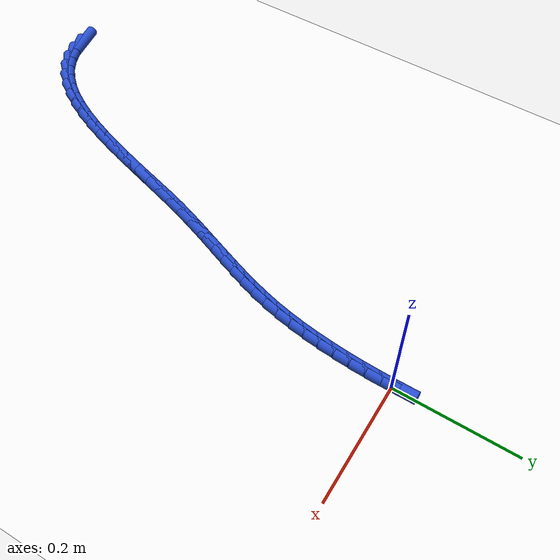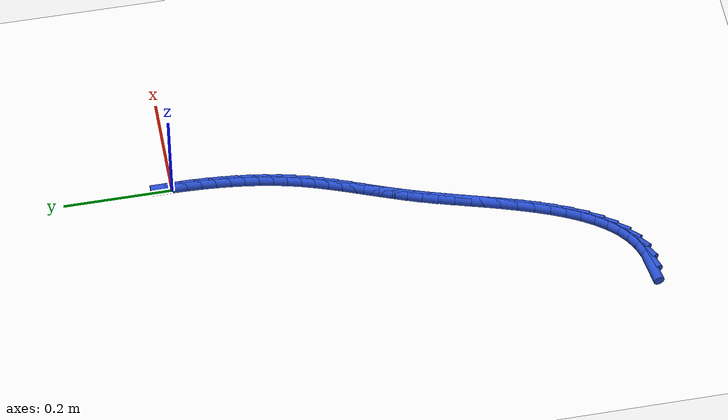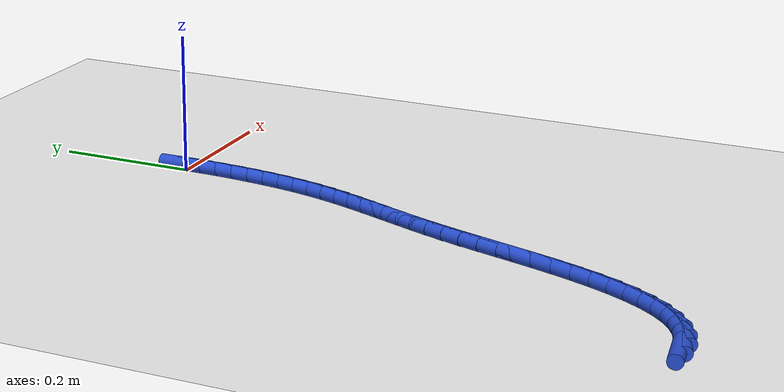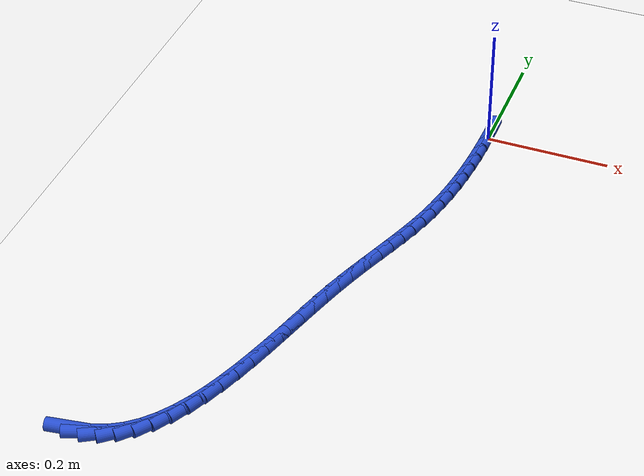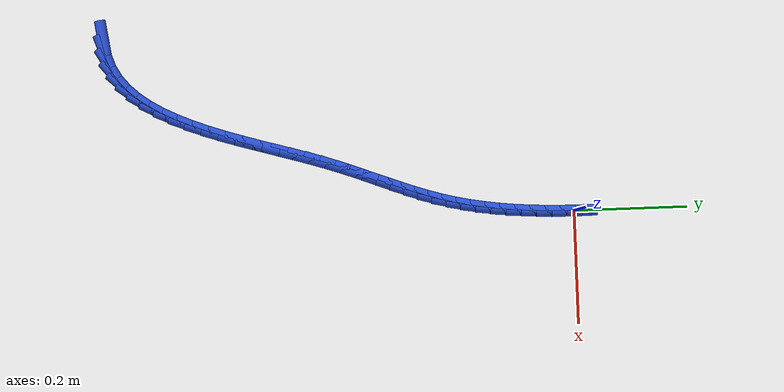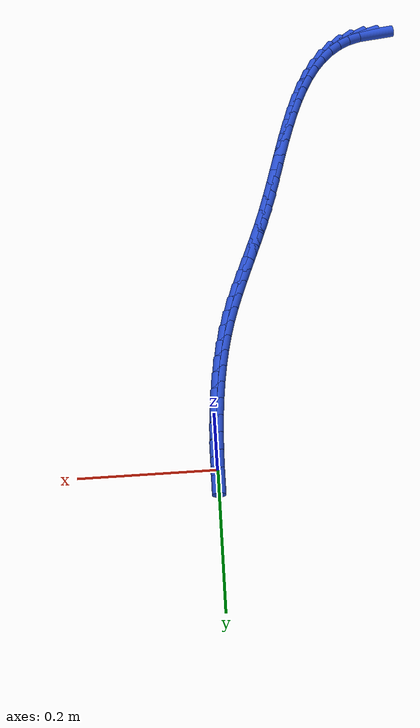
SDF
<sdf version="1.6">
 <world name="default">
  <model name="ground_plane">
   <static>1</static>
   <link name="link">
    <collision name="collision">
     <geometry><plane><normal>0 0 1</normal><size>100 100</size></plane></geometry>
     <surface><friction><ode><mu>100</mu><mu2>50</mu2></ode></friction></surface>
    </collision>
    <visual name="visual">
     <cast_shadows>0</cast_shadows>
     <geometry><plane><normal>0 0 1</normal><size>100 100</size></plane></geometry>
     <material>
      <script><uri>file://media/materials/scripts/gazebo.material</uri><name>Gazebo/WhiteGlow</name></script>
     </material>
    </visual>
   </link>
  </model>
  <model name="line">
   <link name="link_246">
    <pose>-0.3256677049028621 -0.8202139345699211 0.01 0 1.57 0.15234743390666577</pose>
    <collision name="collision">
     <geometry><cylinder><radius>0.01</radius><length>0.08</length></cylinder></geometry>
    </collision>
    <visual name="visual">
     <material>
      <script><name>Gazebo/Blue</name><uri>file://media/materials/scripts/gazebo.material</uri></script>
     </material>
     <geometry><cylinder><radius>0.01</radius><length>0.08</length></cylinder></geometry>
    </visual>
   </link>
   <link name="link_247">
    <pose>-0.3020553265737306 -0.8165885578096587 0.01 0 1.57 0.3411176343831295</pose>
    <collision name="collision">
     <geometry><cylinder><radius>0.01</radius><length>0.08</length></cylinder></geometry>
    </collision>
    <visual name="visual">
     <material>
      <script><name>Gazebo/Blue</name><uri>file://media/materials/scripts/gazebo.material</uri></script>
     </material>
     <geometry><cylinder><radius>0.01</radius><length>0.08</length></cylinder></geometry>
    </visual>
   </link>
   <link name="link_248">
    <pose>-0.2804743852537294 -0.8089274345750729 0.01 0 1.57 0.5233773527447314</pose>
    <collision name="collision">
     <geometry><cylinder><radius>0.01</radius><length>0.08</length></cylinder></geometry>
    </collision>
    <visual name="visual">
     <material>
      <script><name>Gazebo/Blue</name><uri>file://media/materials/scripts/gazebo.material</uri></script>
     </material>
     <geometry><cylinder><radius>0.01</radius><length>0.08</length></cylinder></geometry>
    </visual>
   </link>
   <link name="link_249">
    <pose>-0.2607768314773622 -0.7975608611747657 0.01 0 1.57 0.6871710145821875</pose>
    <collision name="collision">
     <geometry><cylinder><radius>0.01</radius><length>0.08</length></cylinder></geometry>
    </collision>
    <visual name="visual">
     <material>
      <script><name>Gazebo/Blue</name><uri>file://media/materials/scripts/gazebo.material</uri></script>
     </material>
     <geometry><cylinder><radius>0.01</radius><length>0.08</length></cylinder></geometry>
    </visual>
   </link>
   <link name="link_250">
    <pose>-0.24281388263402956 -0.7828206245300234 0.01 0 1.57 0.8265054887096277</pose>
    <collision name="collision">
     <geometry><cylinder><radius>0.01</radius><length>0.08</length></cylinder></geometry>
    </collision>
    <visual name="visual">
     <material>
      <script><name>Gazebo/Blue</name><uri>file://media/materials/scripts/gazebo.material</uri></script>
     </material>
     <geometry><cylinder><radius>0.01</radius><length>0.08</length></cylinder></geometry>
    </visual>
   </link>
   <link name="link_251">
    <pose>-0.22643675611313246 -0.765038511562133 0.01 0 1.57 0.9408307306522792</pose>
    <collision name="collision">
     <geometry><cylinder><radius>0.01</radius><length>0.08</length></cylinder></geometry>
    </collision>
    <visual name="visual">
     <material>
      <script><name>Gazebo/Blue</name><uri>file://media/materials/scripts/gazebo.material</uri></script>
     </material>
     <geometry><cylinder><radius>0.01</radius><length>0.08</length></cylinder></geometry>
    </visual>
   </link>
   <link name="link_252">
    <pose>-0.21149666930407135 -0.7445463091923812 0.01 0 1.57 1.0326456431783801</pose>
    <collision name="collision">
     <geometry><cylinder><radius>0.01</radius><length>0.08</length></cylinder></geometry>
    </collision>
    <visual name="visual">
     <material>
      <script><name>Gazebo/Blue</name><uri>file://media/materials/scripts/gazebo.material</uri></script>
     </material>
     <geometry><cylinder><radius>0.01</radius><length>0.08</length></cylinder></geometry>
    </visual>
   </link>
   <link name="link_253">
    <pose>-0.19784483959624777 -0.721675804342055 0.01 0 1.57 1.1054214340294222</pose>
    <collision name="collision">
     <geometry><cylinder><radius>0.01</radius><length>0.08</length></cylinder></geometry>
    </collision>
    <visual name="visual">
     <material>
      <script><name>Gazebo/Blue</name><uri>file://media/materials/scripts/gazebo.material</uri></script>
     </material>
     <geometry><cylinder><radius>0.01</radius><length>0.08</length></cylinder></geometry>
    </visual>
   </link>
   <link name="link_254">
    <pose>-0.18533248437906222 -0.6967587839324413 0.01 0 1.57 1.1624817488314039</pose>
    <collision name="collision">
     <geometry><cylinder><radius>0.01</radius><length>0.08</length></cylinder></geometry>
    </collision>
    <visual name="visual">
     <material>
      <script><name>Gazebo/Blue</name><uri>file://media/materials/scripts/gazebo.material</uri></script>
     </material>
     <geometry><cylinder><radius>0.01</radius><length>0.08</length></cylinder></geometry>
    </visual>
   </link>
   <link name="link_255">
    <pose>-0.1738108210419154 -0.6701270348848265 0.01 0 1.57 1.2065838858881544</pose>
    <collision name="collision">
     <geometry><cylinder><radius>0.01</radius><length>0.08</length></cylinder></geometry>
    </collision>
    <visual name="visual">
     <material>
      <script><name>Gazebo/Blue</name><uri>file://media/materials/scripts/gazebo.material</uri></script>
     </material>
     <geometry><cylinder><radius>0.01</radius><length>0.08</length></cylinder></geometry>
    </visual>
   </link>
   <link name="link_256">
    <pose>-0.16313106697420815 -0.6421123441204973 0.01 0 1.57 1.2398466250267612</pose>
    <collision name="collision">
     <geometry><cylinder><radius>0.01</radius><length>0.08</length></cylinder></geometry>
    </collision>
    <visual name="visual">
     <material>
      <script><name>Gazebo/Blue</name><uri>file://media/materials/scripts/gazebo.material</uri></script>
     </material>
     <geometry><cylinder><radius>0.01</radius><length>0.08</length></cylinder></geometry>
    </visual>
   </link>
   <link name="link_257">
    <pose>-0.15314443956534132 -0.6130464985607407 0.01 0 1.57 1.263805773329785</pose>
    <collision name="collision">
     <geometry><cylinder><radius>0.01</radius><length>0.08</length></cylinder></geometry>
    </collision>
    <visual name="visual">
     <material>
      <script><name>Gazebo/Blue</name><uri>file://media/materials/scripts/gazebo.material</uri></script>
     </material>
     <geometry><cylinder><radius>0.01</radius><length>0.08</length></cylinder></geometry>
    </visual>
   </link>
   <link name="link_258">
    <pose>-0.14370215620471571 -0.5832612851268433 0.01 0 1.57 1.2794951081497303</pose>
    <collision name="collision">
     <geometry><cylinder><radius>0.01</radius><length>0.08</length></cylinder></geometry>
    </collision>
    <visual name="visual">
     <material>
      <script><name>Gazebo/Blue</name><uri>file://media/materials/scripts/gazebo.material</uri></script>
     </material>
     <geometry><cylinder><radius>0.01</radius><length>0.08</length></cylinder></geometry>
    </visual>
   </link>
   <link name="link_259">
    <pose>-0.13465543428173213 -0.5530884907400919 0.01 0 1.57 1.287512307629797</pose>
    <collision name="collision">
     <geometry><cylinder><radius>0.01</radius><length>0.08</length></cylinder></geometry>
    </collision>
    <visual name="visual">
     <material>
      <script><name>Gazebo/Blue</name><uri>file://media/materials/scripts/gazebo.material</uri></script>
     </material>
     <geometry><cylinder><radius>0.01</radius><length>0.08</length></cylinder></geometry>
    </visual>
   </link>
   <link name="link_260">
    <pose>-0.12585549118579137 -0.5228599023217732 0.01 0 1.57 1.2880556526394464</pose>
    <collision name="collision">
     <geometry><cylinder><radius>0.01</radius><length>0.08</length></cylinder></geometry>
    </collision>
    <visual name="visual">
     <material>
      <script><name>Gazebo/Blue</name><uri>file://media/materials/scripts/gazebo.material</uri></script>
     </material>
     <geometry><cylinder><radius>0.01</radius><length>0.08</length></cylinder></geometry>
    </visual>
   </link>
   <link name="link_261">
    <pose>-0.11715354430629402 -0.49290730679317296 0.01 0 1.57 1.280925719078275</pose>
    <collision name="collision">
     <geometry><cylinder><radius>0.01</radius><length>0.08</length></cylinder></geometry>
    </collision>
    <visual name="visual">
     <material>
      <script><name>Gazebo/Blue</name><uri>file://media/materials/scripts/gazebo.material</uri></script>
     </material>
     <geometry><cylinder><radius>0.01</radius><length>0.08</length></cylinder></geometry>
    </visual>
   </link>
   <link name="link_262">
    <pose>-0.10840081103264139 -0.46356249107558 0.01 0 1.57 1.2654866210061324</pose>
    <collision name="collision">
     <geometry><cylinder><radius>0.01</radius><length>0.08</length></cylinder></geometry>
    </collision>
    <visual name="visual">
     <material>
      <script><name>Gazebo/Blue</name><uri>file://media/materials/scripts/gazebo.material</uri></script>
     </material>
     <geometry><cylinder><radius>0.01</radius><length>0.08</length></cylinder></geometry>
    </visual>
   </link>
   <link name="link_263">
    <pose>-0.09944850875423406 -0.43515724209028017 0.01 0 1.57 1.2429415469377736</pose>
    <collision name="collision">
     <geometry><cylinder><radius>0.01</radius><length>0.08</length></cylinder></geometry>
    </collision>
    <visual name="visual">
     <material>
      <script><name>Gazebo/Blue</name><uri>file://media/materials/scripts/gazebo.material</uri></script>
     </material>
     <geometry><cylinder><radius>0.01</radius><length>0.08</length></cylinder></geometry>
    </visual>
   </link>
   <link name="link_264">
    <pose>-0.09019235035772936 -0.40794362954984065 0.01 0 1.57 1.2235087485722262</pose>
    <collision name="collision">
     <geometry><cylinder><radius>0.01</radius><length>0.08</length></cylinder></geometry>
    </collision>
    <visual name="visual">
     <material>
      <script><name>Gazebo/Blue</name><uri>file://media/materials/scripts/gazebo.material</uri></script>
     </material>
     <geometry><cylinder><radius>0.01</radius><length>0.08</length></cylinder></geometry>
    </visual>
   </link>
   <link name="link_265">
    <pose>-0.08073228945950071 -0.3818078097175221 0.01 0 1.57 1.211101771314108</pose>
    <collision name="collision">
     <geometry><cylinder><radius>0.01</radius><length>0.08</length></cylinder></geometry>
    </collision>
    <visual name="visual">
     <material>
      <script><name>Gazebo/Blue</name><uri>file://media/materials/scripts/gazebo.material</uri></script>
     </material>
     <geometry><cylinder><radius>0.01</radius><length>0.08</length></cylinder></geometry>
    </visual>
   </link>
   <link name="link_266">
    <pose>-0.0712268450822288 -0.35653101429104056 0.01 0 1.57 1.2065709645324274</pose>
    <collision name="collision">
     <geometry><cylinder><radius>0.01</radius><length>0.08</length></cylinder></geometry>
    </collision>
    <visual name="visual">
     <material>
      <script><name>Gazebo/Blue</name><uri>file://media/materials/scripts/gazebo.material</uri></script>
     </material>
     <geometry><cylinder><radius>0.01</radius><length>0.08</length></cylinder></geometry>
    </visual>
   </link>
   <link name="link_267">
    <pose>-0.061834541174554836 -0.3318944661428637 0.01 0 1.57 1.2105787684231695</pose>
    <collision name="collision">
     <geometry><cylinder><radius>0.01</radius><length>0.08</length></cylinder></geometry>
    </collision>
    <visual name="visual">
     <material>
      <script><name>Gazebo/Blue</name><uri>file://media/materials/scripts/gazebo.material</uri></script>
     </material>
     <geometry><cylinder><radius>0.01</radius><length>0.08</length></cylinder></geometry>
    </visual>
   </link>
   <link name="link_268">
    <pose>-0.05271390168512014 -0.3076793881454589 0.01 0 1.57 1.2235461669050423</pose>
    <collision name="collision">
     <geometry><cylinder><radius>0.01</radius><length>0.08</length></cylinder></geometry>
    </collision>
    <visual name="visual">
     <material>
      <script><name>Gazebo/Blue</name><uri>file://media/materials/scripts/gazebo.material</uri></script>
     </material>
     <geometry><cylinder><radius>0.01</radius><length>0.08</length></cylinder></geometry>
    </visual>
   </link>
   <link name="link_269">
    <pose>-0.04402345056256597 -0.2836670031712936 0.01 0 1.57 1.2455945179578278</pose>
    <collision name="collision">
     <geometry><cylinder><radius>0.01</radius><length>0.08</length></cylinder></geometry>
    </collision>
    <visual name="visual">
     <material>
      <script><name>Gazebo/Blue</name><uri>file://media/materials/scripts/gazebo.material</uri></script>
     </material>
     <geometry><cylinder><radius>0.01</radius><length>0.08</length></cylinder></geometry>
    </visual>
   </link>
   <link name="link_270">
    <pose>-0.035921711755533346 -0.2596385340928343 0.01 0 1.57 1.2764870897507903</pose>
    <collision name="collision">
     <geometry><cylinder><radius>0.01</radius><length>0.08</length></cylinder></geometry>
    </collision>
    <visual name="visual">
     <material>
      <script><name>Gazebo/Blue</name><uri>file://media/materials/scripts/gazebo.material</uri></script>
     </material>
     <geometry><cylinder><radius>0.01</radius><length>0.08</length></cylinder></geometry>
    </visual>
   </link>
   <link name="link_271">
    <pose>-0.028567209212664046 -0.23537520378255022 0.01 0 1.57 1.315380294689474</pose>
    <collision name="collision">
     <geometry><cylinder><radius>0.01</radius><length>0.08</length></cylinder></geometry>
    </collision>
    <visual name="visual">
     <material>
      <script><name>Gazebo/Blue</name><uri>file://media/materials/scripts/gazebo.material</uri></script>
     </material>
     <geometry><cylinder><radius>0.01</radius><length>0.08</length></cylinder></geometry>
    </visual>
   </link>
   <link name="link_272">
    <pose>-0.022114516760645547 -0.21066352274995384 0.01 0 1.57 1.356309386798988</pose>
    <collision name="collision">
     <geometry><cylinder><radius>0.01</radius><length>0.08</length></cylinder></geometry>
    </collision>
    <visual name="visual">
     <material>
      <script><name>Gazebo/Blue</name><uri>file://media/materials/scripts/gazebo.material</uri></script>
     </material>
     <geometry><cylinder><radius>0.01</radius><length>0.08</length></cylinder></geometry>
    </visual>
   </link>
   <link name="link_273">
    <pose>-0.016616781794734973 -0.18542577102321808 0.01 0 1.57 1.3937676812185447</pose>
    <collision name="collision">
     <geometry><cylinder><radius>0.01</radius><length>0.08</length></cylinder></geometry>
    </collision>
    <visual name="visual">
     <material>
      <script><name>Gazebo/Blue</name><uri>file://media/materials/scripts/gazebo.material</uri></script>
     </material>
     <geometry><cylinder><radius>0.01</radius><length>0.08</length></cylinder></geometry>
    </visual>
   </link>
   <link name="link_274">
    <pose>-0.012019478194607676 -0.159728360502028 0.01 0 1.57 1.4277589013154992</pose>
    <collision name="collision">
     <geometry><cylinder><radius>0.01</radius><length>0.08</length></cylinder></geometry>
    </collision>
    <visual name="visual">
     <material>
      <script><name>Gazebo/Blue</name><uri>file://media/materials/scripts/gazebo.material</uri></script>
     </material>
     <geometry><cylinder><radius>0.01</radius><length>0.08</length></cylinder></geometry>
    </visual>
   </link>
   <link name="link_275">
    <pose>-0.00826287890177629 -0.1336446650668953 0.01 0 1.57 1.4585427661695785</pose>
    <collision name="collision">
     <geometry><cylinder><radius>0.01</radius><length>0.08</length></cylinder></geometry>
    </collision>
    <visual name="visual">
     <material>
      <script><name>Gazebo/Blue</name><uri>file://media/materials/scripts/gazebo.material</uri></script>
     </material>
     <geometry><cylinder><radius>0.01</radius><length>0.08</length></cylinder></geometry>
    </visual>
   </link>
   <link name="link_276">
    <pose>-0.005287256857753449 -0.10724805859833164 0.01 0 1.57 1.4863617311664996</pose>
    <collision name="collision">
     <geometry><cylinder><radius>0.01</radius><length>0.08</length></cylinder></geometry>
    </collision>
    <visual name="visual">
     <material>
      <script><name>Gazebo/Blue</name><uri>file://media/materials/scripts/gazebo.material</uri></script>
     </material>
     <geometry><cylinder><radius>0.01</radius><length>0.08</length></cylinder></geometry>
    </visual>
   </link>
   <link name="link_277">
    <pose>-0.0030328850040517693 -0.08061191497684869 0.01 0 1.57 1.5114366064856342</pose>
    <collision name="collision">
     <geometry><cylinder><radius>0.01</radius><length>0.08</length></cylinder></geometry>
    </collision>
    <visual name="visual">
     <material>
      <script><name>Gazebo/Blue</name><uri>file://media/materials/scripts/gazebo.material</uri></script>
     </material>
     <geometry><cylinder><radius>0.01</radius><length>0.08</length></cylinder></geometry>
    </visual>
   </link>
   <link name="link_278">
    <pose>-0.0014400362821838848 -0.05380960808295816 0.01 0 1.57 1.5339641682170164</pose>
    <collision name="collision">
     <geometry><cylinder><radius>0.01</radius><length>0.08</length></cylinder></geometry>
    </collision>
    <visual name="visual">
     <material>
      <script><name>Gazebo/Blue</name><uri>file://media/materials/scripts/gazebo.material</uri></script>
     </material>
     <geometry><cylinder><radius>0.01</radius><length>0.08</length></cylinder></geometry>
    </visual>
   </link>
   <link name="link_279">
    <pose>-0.0004489836336624012 -0.026914511797170883 0.01 0 1.57 1.5541160319524785</pose>
    <collision name="collision">
     <geometry><cylinder><radius>0.01</radius><length>0.08</length></cylinder></geometry>
    </collision>
    <visual name="visual">
     <material>
      <script><name>Gazebo/Blue</name><uri>file://media/materials/scripts/gazebo.material</uri></script>
     </material>
     <geometry><cylinder><radius>0.01</radius><length>0.08</length></cylinder></geometry>
    </visual>
   </link>
   <link name="link_280">
    <pose>-4.9873299934333204e-18 -2.0816681711721685e-16 0.01 0 1.57 -1.5695544199351306</pose>
    <collision name="collision">
     <geometry><cylinder><radius>0.01</radius><length>0.08</length></cylinder></geometry>
    </collision>
    <visual name="visual">
     <material>
      <script><name>Gazebo/Blue</name><uri>file://media/materials/scripts/gazebo.material</uri></script>
     </material>
     <geometry><cylinder><radius>0.01</radius><length>0.08</length></cylinder></geometry>
    </visual>
   </link>
  </model>
 </world>
</sdf>
